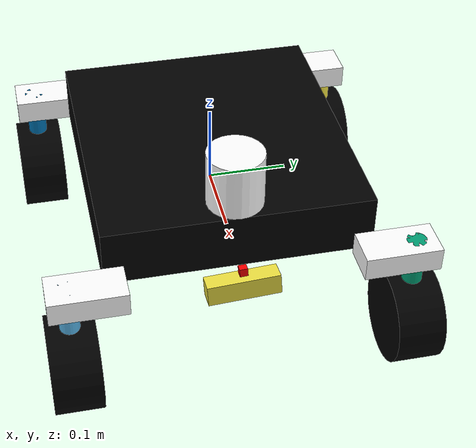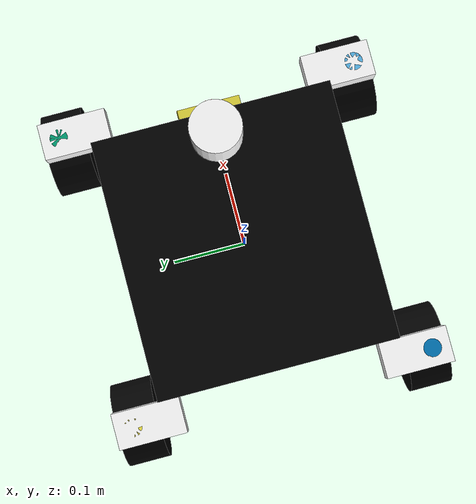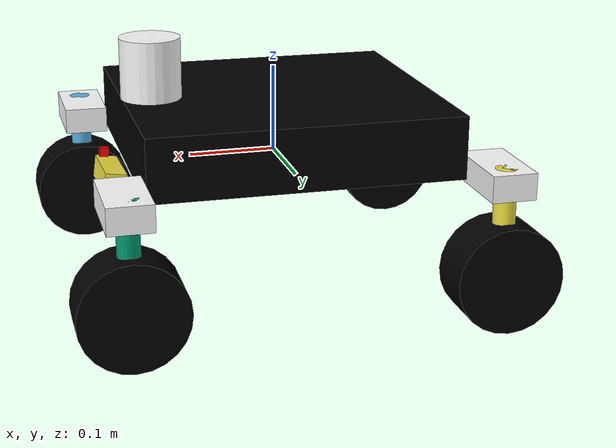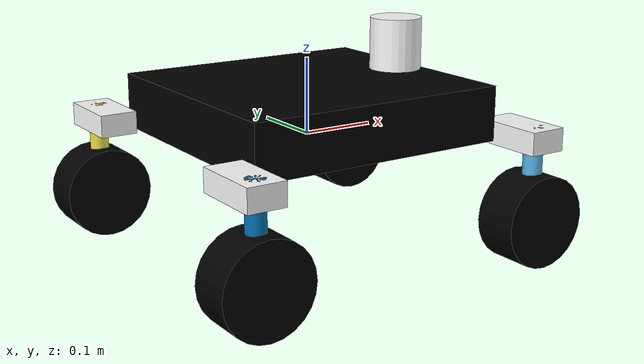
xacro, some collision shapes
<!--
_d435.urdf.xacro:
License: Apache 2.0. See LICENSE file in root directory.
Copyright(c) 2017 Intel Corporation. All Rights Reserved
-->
<?xml version="1.0"?>
<robot name="ogv" xmlns:xacro="http://ros.org/wiki/xacro">

  <xacro:include filename="$(find ogv_urdf)/urdf/_d435.urdf.xacro" />
  <xacro:include filename="$(find ogv_urdf)/urdf/ogv_body.urdf.xacro" />

  <xacro:ogv_body >
  </xacro:ogv_body>

  <xacro:sensor_d435 parent="realsense_base_link">
    <origin xyz="0 0 0" rpy="0 0 0"/>
  </xacro:sensor_d435>

  <link name="thermal_frame">
    <visual>
      <geometry>
        <box size="0.01 0.01 0.01"/>
      </geometry>
      <origin rpy="0 0 0" xyz="0 0 0"/>
      <material name="red"/>
    </visual>
    <collision>
      <geometry>
        <box size="0.01 0.01 0.01"/>
      </geometry>
    </collision>
    <inertial>
      <mass value="0.010"/>
      <inertia ixx="0.0001" ixy="0.0" ixz="0.0" iyy="0.000016" iyz="0.0" izz="0.0001"/>
    </inertial>
  </link>
  <link name="thermal_optical_frame"/>

  <joint name="realsense_to_thermal" type="fixed">
    <parent link="realsense_base_link"/>
    <child link="thermal_frame"/>
    <origin xyz="0.010 0 0.040"/>
  </joint>

  <joint name="thermal_to_thermal_optical_joint" type="fixed">
    <parent link="thermal_frame"/>
    <child link="thermal_optical_frame"/>
    <origin xyz="0 0 0" rpy="-1.57 0 -1.57"/>
  </joint>

</robot>

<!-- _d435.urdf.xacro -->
<robot name="sensor_d435" xmlns:xacro="http://ros.org/wiki/xacro">
  <!-- Includes -->
  <xacro:include filename="$(find ogv_urdf)/urdf/_materials.urdf.xacro" />

  <xacro:macro name="sensor_d435" params="parent *origin name:=camera">
    <xacro:property name="M_PI" value="3.1415926535897931" />
    <xacro:arg name="use_nominal_extrinsics" default="true"/>

    <!-- The following values are approximate, and the camera node
     publishing TF values with actual calibrated camera extrinsic values -->
    <xacro:property name="d435_cam_depth_to_infra1_offset" value="0.0"/>
    <xacro:property name="d435_cam_depth_to_infra2_offset" value="-0.050"/>
    <xacro:property name="d435_cam_depth_to_color_offset" value="0.015"/>

    <!-- The following values model the aluminum peripherial case for the
  	D435 camera, with the camera joint represented by the actual
  	peripherial camera tripod mount -->
    <xacro:property name="d435_cam_width" value="0.090"/>
    <xacro:property name="d435_cam_height" value="0.025"/>
    <xacro:property name="d435_cam_depth" value="0.02505"/>
    <xacro:property name="d435_cam_mount_from_center_offset" value="0.0149"/>

    <!-- The following offset is relative the the physical D435 camera peripherial
  	camera tripod mount -->
    <xacro:property name="d435_cam_depth_px" value="${d435_cam_mount_from_center_offset}"/>
    <xacro:property name="d435_cam_depth_py" value="0.0175"/>
    <xacro:property name="d435_cam_depth_pz" value="${d435_cam_height/2}"/>

    <!-- camera body, with origin at bottom screw mount -->
    <joint name="${name}_joint" type="fixed">
      <xacro:insert_block name="origin" />
      <parent link="${parent}"/>
      <child link="${name}_bottom_screw_frame" />
    </joint>
    <link name="${name}_bottom_screw_frame"/>

    <joint name="${name}_link_joint" type="fixed">
      <origin xyz="0 ${d435_cam_depth_py} ${d435_cam_depth_pz}" rpy="0 0 0"/>
      <parent link="${name}_bottom_screw_frame"/>
      <child link="${name}_link" />
    </joint>

    <link name="${name}_link">
      <visual>
        <origin xyz="${d435_cam_mount_from_center_offset} ${-d435_cam_depth_py} 0" rpy="${M_PI/2} 0 ${M_PI/2}"/>
        <geometry>
	        <mesh filename="package://ogv_urdf/meshes/d435.dae" />
        </geometry>
      </visual>
      <collision>
        <origin xyz="0 ${-d435_cam_depth_py} 0" rpy="0 0 0"/>
        <geometry>
          <box size="${d435_cam_depth} ${d435_cam_width} ${d435_cam_height}"/>
        </geometry>
      </collision>
      <inertial>
        <!-- The following are not reliable values, and should not be used for modeling -->
        <mass value="0.564" />
        <origin xyz="0 0 0" />
        <inertia ixx="0.003881243" ixy="0.0" ixz="0.0" iyy="0.000498940" iyz="0.0" izz="0.003879257" />
      </inertial>
    </link>

    <!-- Use the nominal extrinsics between camera frames if the calibrated extrinsics aren't being published. e.g. running the device in simulation  -->
    <xacro:if value="$(arg use_nominal_extrinsics)">
      <!-- camera depth joints and links -->
      <joint name="${name}_depth_joint" type="fixed">
        <origin xyz="0 0 0" rpy="0 0 0"/>
        <parent link="${name}_link"/>
        <child link="${name}_depth_frame" />
      </joint>
      <link name="${name}_depth_frame"/>

      <joint name="${name}_depth_optical_joint" type="fixed">
        <origin xyz="0 0 0" rpy="${-M_PI/2} 0 ${-M_PI/2}" />
        <parent link="${name}_depth_frame" />
        <child link="${name}_depth_optical_frame" />
      </joint>
      <link name="${name}_depth_optical_frame"/>

      <!-- camera left IR joints and links -->
      <joint name="${name}_infra1_joint" type="fixed">
        <origin xyz="0 ${d435_cam_depth_to_infra1_offset} 0" rpy="0 0 0" />
        <parent link="${name}_link" />
        <child link="${name}_infra1_frame" />
      </joint>
      <link name="${name}_infra1_frame"/>

      <joint name="${name}_infra1_optical_joint" type="fixed">
        <origin xyz="0 0 0" rpy="${-M_PI/2} 0 ${-M_PI/2}" />
        <parent link="${name}_infra1_frame" />
        <child link="${name}_infra1_optical_frame" />
      </joint>
      <link name="${name}_infra1_optical_frame"/>

      <!-- camera right IR joints and links -->
      <joint name="${name}_infra2_joint" type="fixed">
        <origin xyz="0 ${d435_cam_depth_to_infra2_offset} 0" rpy="0 0 0" />
        <parent link="${name}_link" />
        <child link="${name}_infra2_frame" />
      </joint>
      <link name="${name}_infra2_frame"/>

      <joint name="${name}_infra2_optical_joint" type="fixed">
        <origin xyz="0 0 0" rpy="${-M_PI/2} 0 ${-M_PI/2}" />
        <parent link="${name}_infra2_frame" />
        <child link="${name}_infra2_optical_frame" />
      </joint>
      <link name="${name}_infra2_optical_frame"/>

      <!-- camera color joints and links -->
      <joint name="${name}_color_joint" type="fixed">
        <origin xyz="0 ${d435_cam_depth_to_color_offset} 0" rpy="0 0 0" />
        <parent link="${name}_link" />
        <child link="${name}_color_frame" />
      </joint>
      <link name="${name}_color_frame"/>

      <joint name="${name}_color_optical_joint" type="fixed">
        <origin xyz="0 0 0" rpy="${-M_PI/2} 0 ${-M_PI/2}" />
        <parent link="${name}_color_frame" />
        <child link="${name}_color_optical_frame" />
      </joint>
      <link name="${name}_color_optical_frame"/>
    </xacro:if>
  </xacro:macro>
</robot>

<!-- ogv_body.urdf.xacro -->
<robot name="ogv_body">

<xacro:macro name="ogv_body" xmlns:xacro="http://ros.org/wiki/xacro">

  <material name="blue">
    <color rgba="0 0 0.8 1"/>
  </material>
  <material name="black">
    <color rgba="0 0 0 1"/>
  </material>
  <material name="white">
    <color rgba="1 1 1 1"/>
  </material>
  <material name="red">
    <color rgba="1 0 0 1"/>
  </material>

  <link name="base_link">
  </link>

  <link name="main_frame">
    <visual>
      <geometry>
        <box size="0.355 0.330 0.072"/>
      </geometry>
      <origin rpy="0 0 0" xyz="0 0 0.036"/>
      <material name="black"/>
    </visual>
    <collision>
      <geometry>
        <box size="0.355 0.330 0.072"/>
      </geometry>
    </collision>
    <inertial>
      <mass value="4.07"/>
      <inertia ixx="0.426" ixy="0.0" ixz="0.0" iyy="0.496" iyz="0.0" izz="0.91"/>
    </inertial>
  </link>

  <joint name="base_to_main_frame" type="fixed">
    <parent link="base_link"/>
    <child link="main_frame"/>
    <origin xyz="0 0 0"/>
  </joint>

  <!-- LIDAR  -->

  <link name="base_laser_link">
    <visual>
      <geometry>
        <cylinder length="0.07" radius="0.035"/>
      </geometry>
      <origin rpy="0 0 0" xyz="0 0 -0.027"/>
      <material name="white"/>
    </visual>
    <collision>
      <geometry>
        <cylinder length="0.07" radius="0.035"/>
      </geometry>
    </collision>
    <inertial>
      <mass value="0.22"/>
      <inertia ixx="0.000157" ixy="0.0" ixz="0.0" iyy="0.000157" iyz="0.0" izz="0.000135"/>
    </inertial>
  </link>

  <joint name="base_to_laser" type="fixed">
    <parent link="base_link"/>
    <child link="base_laser_link"/>
    <origin xyz="0.144 0 0.134"/>
  </joint>

  <link name="laser_frame" />

  <joint name="base_laser_rotated" type="fixed">
    <parent link="base_laser_link"/>
    <child link="laser_frame"/>
    <axis xyz="0 0 1"/>
    <origin xyz="0 0 0" rpy="0 0 3.14"/>
  </joint>

  <!-- REALSENSE CAMERA -->
  <link name="realsense_base_link">
  </link>

  <joint name="base_to_realsense" type="fixed">
    <parent link="base_link"/>
    <child link="realsense_base_link"/>
    <origin xyz="0.196 0 -0.03" rpy="0.05235 -0.14 0"/>
  </joint>

  <!-- WHEELS AND SERVOS -->

  <link name="right_front_servo_holder">
    <visual>
      <geometry>
        <box size="0.05 0.095 0.03"/>
      </geometry>
      <origin rpy="0 0 0" xyz="0.025 -0.0475 0.015"/>
      <material name="white"/>
    </visual>
    <collision>
      <geometry>
        <box size="0.05 0.095 0.03"/>
      </geometry>
    </collision>
    <inertial>
      <mass value="0.151"/>
      <inertia ixx="0.000125" ixy="0.0" ixz="0.0" iyy="0.000145" iyz="0.0" izz="0.000043"/>
    </inertial>
  </link>

  <joint name="base_to_right_front_servo_holder" type="fixed">
    <parent link="base_link"/>
    <child link="right_front_servo_holder"/>
    <origin xyz="0.179 -0.14 -0.005"/>
  </joint>

  <link name="left_front_servo_holder">
    <visual>
      <geometry>
        <box size="0.05 0.095 0.03"/>
      </geometry>
      <origin rpy="0 0 0" xyz="0.025 0.0475 0.015"/>
      <material name="white"/>
    </visual>
    <collision>
      <geometry>
        <box size="0.05 0.095 0.03"/>
      </geometry>
    </collision>
    <inertial>
      <mass value="0.151"/>
      <inertia ixx="0.000125" ixy="0.0" ixz="0.0" iyy="0.000145" iyz="0.0" izz="0.000043"/>
    </inertial>
  </link>

  <joint name="base_to_left_front_servo_holder" type="fixed">
    <parent link="base_link"/>
    <child link="left_front_servo_holder"/>
    <origin xyz="0.179 0.14 -0.005"/>
  </joint>

  <link name="left_back_servo_holder">
    <visual>
      <geometry>
        <box size="0.05 0.095 0.03"/>
      </geometry>
      <origin rpy="0 0 0" xyz="-0.025 0.0475 0.015"/>
      <material name="white"/>
    </visual>
    <collision>
      <geometry>
        <box size="0.05 0.095 0.03"/>
      </geometry>
    </collision>
    <inertial>
      <mass value="0.151"/>
      <inertia ixx="0.000125" ixy="0.0" ixz="0.0" iyy="0.000145" iyz="0.0" izz="0.000043"/>
    </inertial>
  </link>

  <joint name="base_to_left_back_servo_holder" type="fixed">
    <parent link="base_link"/>
    <child link="left_back_servo_holder"/>
    <origin xyz="-0.179 0.14 -0.005"/>
  </joint>

  <link name="right_back_servo_holder">
    <visual>
      <geometry>
        <box size="0.05 0.095 0.03"/>
      </geometry>
      <origin rpy="0 0 0" xyz="-0.025 -0.0475 0.015"/>
      <material name="white"/>
    </visual>
    <collision>
      <geometry>
        <box size="0.05 0.095 0.03"/>
      </geometry>
    </collision>
    <inertial>
      <mass value="0.151"/>
      <inertia ixx="0.000125" ixy="0.0" ixz="0.0" iyy="0.000145" iyz="0.0" izz="0.000043"/>
    </inertial>
  </link>

  <joint name="base_to_right_back_servo_holder" type="fixed">
    <parent link="base_link"/>
    <child link="right_back_servo_holder"/>
    <origin xyz="-0.179 -0.14 -0.005"/>
  </joint>

  <link name="right_front_servo">
    <visual>
      <geometry>
        <cylinder length="0.12" radius="0.0125"/>
      </geometry>
      <origin rpy="0 0 0 " xyz="0 0 -0.06"/>
    </visual>
    <collision>
      <geometry>
        <cylinder length="0.12" radius="0.0125"/>
      </geometry>
    </collision>
    <inertial>
      <mass value="0.23"/>
      <inertia ixx="0.000285" ixy="0.0" ixz="0.0" iyy="0.000285" iyz="0.0" izz="0.000018"/>
    </inertial>
  </link>

  <joint name="right_front_servo_to_holder" type="revolute">
    <axis xyz="0 0 1"/>
    <limit effort="1000.0" lower="-1.5708" upper="1.5708" velocity="0.1"/>
    <origin rpy="0 0 -3.1426" xyz="0.025 -0.07 0.03"/>
    <parent link="right_front_servo_holder"/>
    <child link="right_front_servo"/>
  </joint>

  <link name="left_front_servo">
    <visual>
      <geometry>
        <cylinder length="0.12" radius="0.0125"/>
      </geometry>
      <origin rpy="0 0 0 " xyz="0 0 -0.06"/>
    </visual>
    <collision>
      <geometry>
        <cylinder length="0.12" radius="0.0125"/>
      </geometry>
    </collision>
    <inertial>
      <mass value="0.23"/>
      <inertia ixx="0.000285" ixy="0.0" ixz="0.0" iyy="0.000285" iyz="0.0" izz="0.000018"/>
    </inertial>
  </link>

  <joint name="left_front_servo_to_holder" type="revolute">
    <axis xyz="0 0 1"/>
    <limit effort="1000.0" lower="-1.5708" upper="1.5708" velocity="0.1"/>
    <origin rpy="0 0 0" xyz="0.025 0.07 0.03"/>
    <parent link="left_front_servo_holder"/>
    <child link="left_front_servo"/>
  </joint>

  <link name="left_back_servo">
    <visual>
      <geometry>
        <cylinder length="0.12" radius="0.0125"/>
      </geometry>
      <origin rpy="0 0 0 " xyz="0 0 -0.06"/>
    </visual>
    <collision>
      <geometry>
        <cylinder length="0.12" radius="0.0125"/>
      </geometry>
    </collision>
    <inertial>
      <mass value="0.23"/>
      <inertia ixx="0.000285" ixy="0.0" ixz="0.0" iyy="0.000285" iyz="0.0" izz="0.000018"/>
    </inertial>
  </link>

  <joint name="left_back_servo_to_holder" type="revolute">
    <axis xyz="0 0 1"/>
    <limit effort="1000.0" lower="-1.5708" upper="1.5708" velocity="0.1"/>
    <origin rpy="0 0 0" xyz="-0.025 0.07 0.03"/>
    <parent link="left_back_servo_holder"/>
    <child link="left_back_servo"/>
  </joint>

  <link name="right_back_servo">
    <visual>
      <geometry>
        <cylinder length="0.12" radius="0.0125"/>
      </geometry>
      <origin rpy="0 0 0 " xyz="0 0 -0.06"/>
    </visual>
    <collision>
      <geometry>
        <cylinder length="0.12" radius="0.0125"/>
      </geometry>
    </collision>
    <inertial>
      <mass value="0.23"/>
      <inertia ixx="0.000285" ixy="0.0" ixz="0.0" iyy="0.000285" iyz="0.0" izz="0.000018"/>
    </inertial>
  </link>

  <joint name="right_back_servo_to_holder" type="revolute">
    <axis xyz="0 0 1"/>
    <limit effort="1000.0" lower="-1.5708" upper="1.5708" velocity="0.1"/>
    <origin rpy="0 0 3.1426" xyz="-0.025 -0.07 0.03"/>
    <parent link="right_back_servo_holder"/>
    <child link="right_back_servo"/>
  </joint>

  <link name="right_front_wheel">
    <visual>
      <origin rpy="1.57075 0 0" xyz="0 0 0"/>
      <geometry>
        <cylinder length="0.06" radius="0.06"/>
      </geometry>
      <material name="black"/>
      <origin rpy="0 0 0" xyz="0 0 0"/>
    </visual>
    <collision>
      <geometry>
        <cylinder length="0.06" radius="0.06"/>
      </geometry>
    </collision>
    <inertial>
      <mass value="0.17"/>
      <inertia ixx="0.000204" ixy="0.0" ixz="0.0" iyy="0.000306" iyz="0.0" izz="0.000204"/>
    </inertial>
  </link>

  <joint name="right_front_wheel_joint" type="continuous">
    <axis rpy="0 0 0" xyz="0 1 0"/>
    <parent link="right_front_servo"/>
    <child link="right_front_wheel"/>
    <origin rpy="0 0 0" xyz="0 0 -0.12"/>
  </joint>

  <link name="left_front_wheel">
    <visual>
      <origin rpy="1.57075 0 0" xyz="0 0 0"/>
      <geometry>
        <cylinder length="0.06" radius="0.06"/>
      </geometry>
      <material name="black"/>
      <origin rpy="0 0 0" xyz="0 0 0"/>
    </visual>
     <collision>
      <geometry>
        <cylinder length="0.06" radius="0.06"/>
      </geometry>
    </collision>
    <inertial>
      <mass value="0.17"/>
      <inertia ixx="0.000204" ixy="0.0" ixz="0.0" iyy="0.000306" iyz="0.0" izz="0.000204"/>
    </inertial>
  </link>

  <joint name="left_front_wheel_joint" type="continuous">
    <axis rpy="0 0 0" xyz="0 1 0"/>
    <parent link="left_front_servo"/>
    <child link="left_front_wheel"/>
    <origin rpy="0 0 0" xyz="0 0 -0.12"/>
  </joint>

  <link name="left_back_wheel">
    <visual>
      <origin rpy="1.57075 0 0" xyz="0 0 0"/>
      <geometry>
        <cylinder length="0.06" radius="0.06"/>
      </geometry>
      <material name="black"/>
      <origin rpy="0 0 0" xyz="0 0 0"/>
    </visual>
     <collision>
      <geometry>
        <cylinder length="0.06" radius="0.06"/>
      </geometry>
    </collision>
    <inertial>
      <mass value="0.17"/>
      <inertia ixx="0.000204" ixy="0.0" ixz="0.0" iyy="0.000306" iyz="0.0" izz="0.000204"/>
    </inertial>
  </link>

  <joint name="left_back_wheel_joint" type="continuous">
    <axis rpy="0 0 0" xyz="0 1 0"/>
    <parent link="left_back_servo"/>
    <child link="left_back_wheel"/>
    <origin rpy="0 0 0" xyz="0 0 -0.12"/>
  </joint>

  <link name="right_back_wheel">
    <visual>
      <origin rpy="1.57075 0 0" xyz="0 0 0"/>
      <geometry>
        <cylinder length="0.06" radius="0.06"/>
      </geometry>
      <material name="black"/>
      <origin rpy="0 0 0" xyz="0 0 0"/>
    </visual>
     <collision>
      <geometry>
        <cylinder length="0.06" radius="0.06"/>
      </geometry>
    </collision>
    <inertial>
      <mass value="0.17"/>
      <inertia ixx="0.000204" ixy="0.0" ixz="0.0" iyy="0.000306" iyz="0.0" izz="0.000204"/>
    </inertial>
  </link>

  <joint name="right_back_wheel_joint" type="continuous">
    <axis rpy="0 0 0" xyz="0 1 0"/>
    <parent link="right_back_servo"/>
    <child link="right_back_wheel"/>
    <origin rpy="0 0 0" xyz="0 0 -0.12"/>
  </joint>

  <!-- FLOOR FRAME -->

  <link name="floor_frame">
  </link>

  <joint name="base_link_to_floor_joint" type="fixed">
    <parent link="base_link"/>
    <child link="floor_frame"/>
    <origin rpy="0 0 0" xyz="0 0 -0.164"/>
  </joint>

  </xacro:macro>
</robot>
